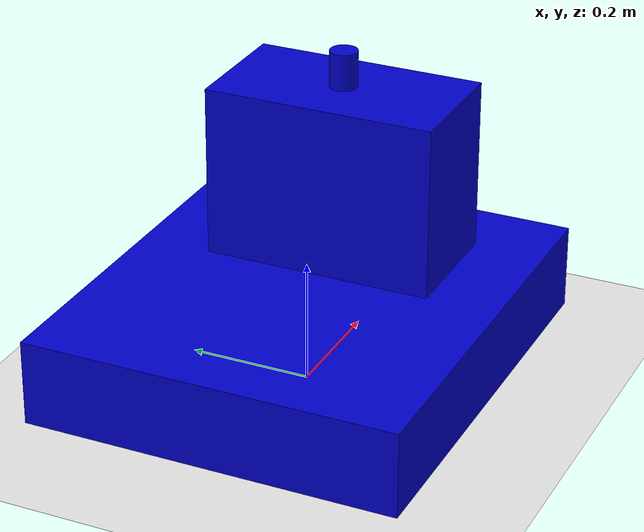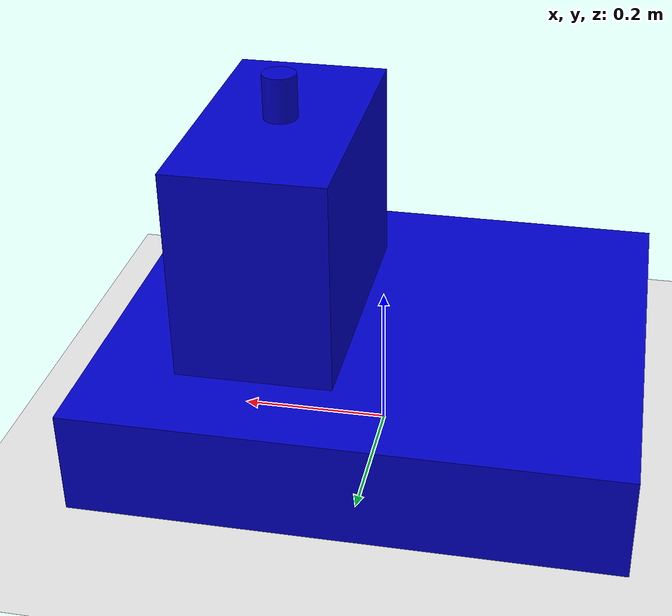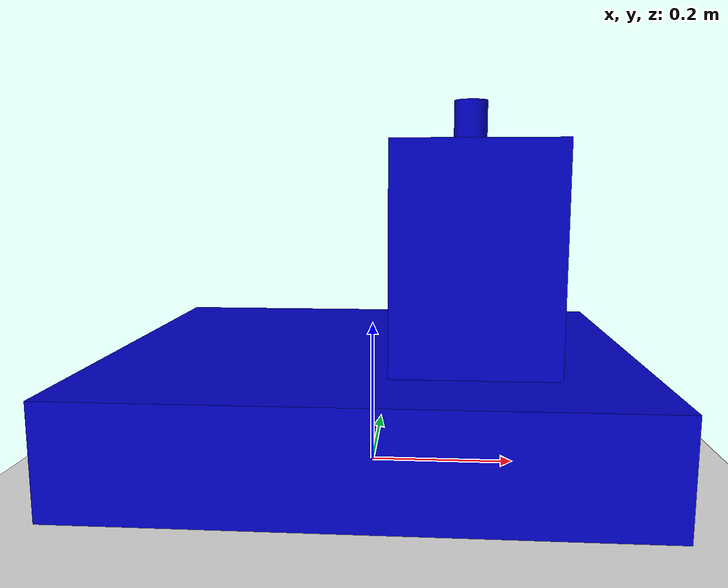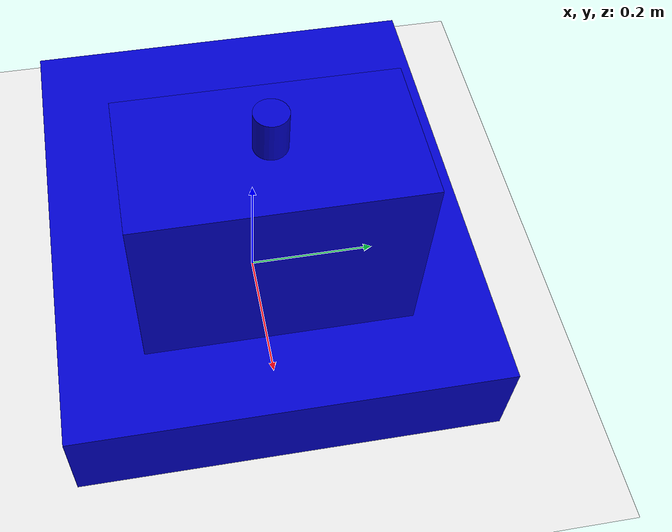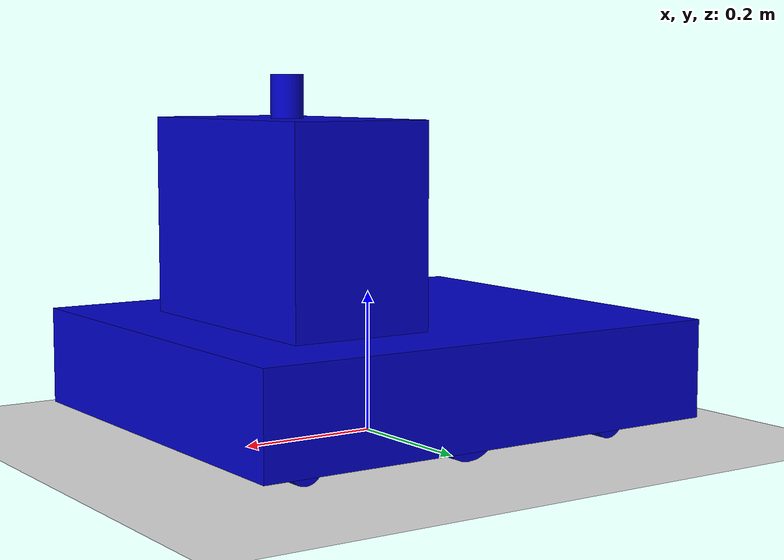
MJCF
<mujoco model="Tracer">
  <compiler angle="radian"/>

  <option timestep="0.002" gravity="0 0 -9.81">
    <flag warmstart="enable"/>
  </option>

  <default>
    <geom condim="3" friction="1 0.5 0.5"/>
  </default>

  <worldbody>
    <geom name="floor" type="plane" size="5 5 0.1" rgba="0.9 0.9 0.9 1"/>

    <!-- base_link at z=0, same as URDF origin. Wheels bottom out at z=0 = ground. -->
    <body name="base_link" pos="0 0 0">
      <freejoint name="base_float"/>
      <inertial pos="0 0 0.0995" mass="10" diaginertia="0.720753 0.426771 0.326184"/>

      <!-- chassis: URDF origin xyz="0 0 0.0995" -->
      <geom name="chassis" size="0.351 0.305 0.0695" pos="0 0 0.0995" type="box" rgba="0 0 0.8 1"/>

      <!-- casters: URDF joint origins exactly -->
      <geom name="fr_caster" size="0.025 0.015" pos="0.25 -0.22 0.025" quat="0.500023 -0.499977 0.5 0.5" type="cylinder" rgba="0 0 0.8 1" friction="0.1 0.005 0.001"/>
      <geom name="br_caster" size="0.025 0.015" pos="-0.25 -0.22 0.025" quat="0.500023 -0.499977 0.5 0.5" type="cylinder" rgba="0 0 0.8 1" friction="0.1 0.005 0.001"/>
      <geom name="fl_caster" size="0.025 0.015" pos="0.25 0.22 0.025" quat="0.500023 -0.499977 0.5 0.5" type="cylinder" rgba="0 0 0.8 1" friction="0.1 0.005 0.001"/>
      <geom name="bl_caster" size="0.025 0.015" pos="-0.25 0.22 0.025" quat="0.500023 -0.499977 0.5 0.5" type="cylinder" rgba="0 0 0.8 1" friction="0.1 0.005 0.001"/>

      <!-- battery: URDF joint origin xyz="0.133 0 0.308954" -->
      <geom name="battery" size="0.102489 0.18796 0.139954" pos="0.133 0 0.308954" type="box" rgba="0 0 0.8 1"/>

      <!-- lidar: battery origin + lidar joint origin = 0.133 0 0.478708 -->
      <geom name="lidar" size="0.0225 0.0298" pos="0.133 0 0.478708" type="cylinder" rgba="0 0 0.8 1"/>

      <!-- right wheel: URDF joint origin xyz="0 -0.22 0.05" -->
      <body name="right_wheel" pos="0 -0.22 0.05">
        <inertial pos="0 0 0" quat="0.5 0.5 -0.5 0.5" mass="0.5" diaginertia="0.000625 0.000379 0.000379"/>
        <joint name="base_to_right_wheel" pos="0 0 0" axis="0 1 0" damping="0.1"/>
        <geom name="right_wheel_geom" size="0.05 0.02" quat="0.500023 -0.499977 0.5 0.5" type="cylinder" rgba="0 0 0.8 1" friction="1.5 0.5 0.5"/>
      </body>

      <!-- left wheel: URDF joint origin xyz="0 0.22 0.05" -->
      <body name="left_wheel" pos="0 0.22 0.05">
        <inertial pos="0 0 0" quat="0.5 0.5 -0.5 0.5" mass="0.5" diaginertia="0.000625 0.000379 0.000379"/>
        <joint name="base_to_left_wheel" pos="0 0 0" axis="0 1 0" damping="0.1"/>
        <geom name="left_wheel_geom" size="0.05 0.02" quat="0.500023 -0.499977 0.5 0.5" type="cylinder" rgba="0 0 0.8 1" friction="1.5 0.5 0.5"/>
      </body>
    </body>
  </worldbody>

  <!-- prevent wheels from colliding with the chassis they overlap into -->
  <contact>
    <exclude body1="base_link" body2="right_wheel"/>
    <exclude body1="base_link" body2="left_wheel"/>
  </contact>

  <actuator>
    <motor name="left_motor" joint="base_to_left_wheel" gear="10" ctrllimited="true" ctrlrange="-1 1"/>
    <motor name="right_motor" joint="base_to_right_wheel" gear="10" ctrllimited="true" ctrlrange="-1 1"/>
  </actuator>
</mujoco>
